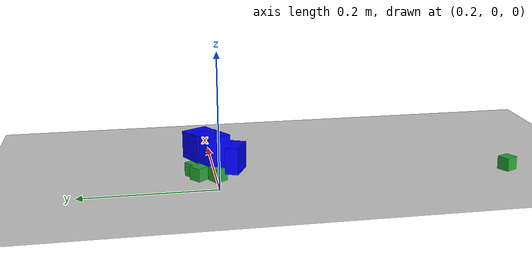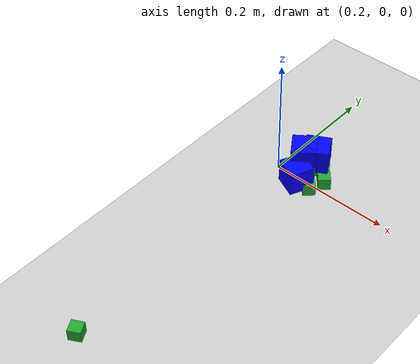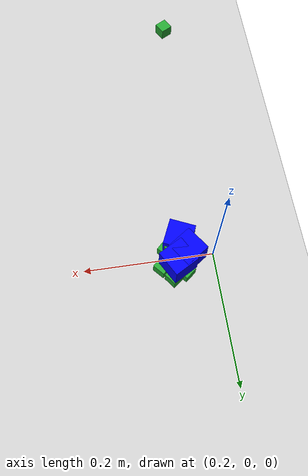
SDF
<sdf version='1.7'>
    <world name='default'>
        <scene>
            <ambient>0.0 0.0 0.0 1.0</ambient>
            <shadows>0</shadows>
            <background>0.7 0.7 0.7 1</background>
        </scene>
        <!-- A global light source -->
        <include>
            <uri>model://sun</uri>
        </include>

        <!-- A ground plane -->
        <include>
            <uri>model://ground_plane</uri>
        </include>

        <!--CUBES-->

        <model name='cube_red1'>
            <include>
                <uri>model://cube_red</uri>
            </include>
            <pose frame=''>0.251 0.00503 0.011 0.000183 0.0 0.750</pose>
        </model>

        <model name='cube_green1'>
            <include>
                <uri>model://cube_green</uri>
            </include>
            <pose frame=''>0.281 0.0135 0.011 0 0 0.7283</pose>
        </model>

        <model name='cube_green2'>
            <include>
                <uri>model://cube_green</uri>
            </include>
            <pose frame=''>0.247 0.0247 0.011 -0.005 -0.0005 0.6658</pose>
        </model>

        <model name='cube_blue1'>
            <include>
                <uri>model://cube_blue</uri>
            </include>
            <pose frame=''>0.26 0.0195 0.030 0.0 0.0 0.506</pose>
        </model>
        <model name='cube_green3'>
            <include>
                <uri>model://cube_green</uri>
            </include>
            <pose frame=''>0.266 0.031 0.011 -0.00036 0.0 0.632</pose>
        </model>
        <model name='cube_green4'>
            <include>
                <uri>model://cube_green</uri>
            </include>
            <pose frame=''>0.271 -0.013 0.011 1.5758 0.003 -0.80</pose>
        </model>
        <model name='cube_blue2'>
            <include>
                <uri>model://cube_blue</uri>
            </include>
            <pose frame=''>0.244 0.008 0.030 0.020 -0.015 0.6022</pose>
        </model>
        <model name='cube_green5'>
            <include>
                <uri>model://cube_green</uri>
            </include>
            <pose frame=''>0.2626 -0.00394 0.030 0.0028 0.0089 0.4633</pose>
        </model>
        <model name='cube_green6'>
            <include>
                <uri>model://cube_green</uri>
            </include>
            <pose frame=''>0.2388 -0.0016 0.011 0.0 -0.021 0.5671</pose>
        </model>
        <model name='cube_blue3'>
            <include>
                <uri>model://cube_blue</uri>
            </include>
            <pose frame=''>0.2514 -0.02 0.011 0.00225 0.001118 -0.4284</pose>
        </model>
        <model name='cube_green7'>
            <include>
                <uri>model://cube_green</uri>
            </include>
            <pose frame=''>0.2076 -0.4405 0.011 0.0 0.0077 0.4973</pose>
        </model>

        <physics name='default_physics' default='0' type='ode'>
            <max_step_size>0.001</max_step_size>
            <real_time_factor>1</real_time_factor>
            <real_time_update_rate>1000</real_time_update_rate>
        </physics>
        <!--GUI-->
        <gui fullscreen='0'>
            <camera name='user_camera'>
                <pose frame=''>0.198 -0.823 0.916 0 0.763 1.592</pose>
                <view_controller>orbit</view_controller>
                <projection_type>perspective</projection_type>
            </camera>
        </gui>
        <!-- SplotLight source -->
    <light name='user_spot_light_0' type='spot'>
      <pose>0.24066 -0.017779 1 0 -0 0</pose>
      <diffuse>0.5 0.5 0.5 1</diffuse>
      <specular>0.1 0.1 0.1 1</specular>
      <direction>0 0 -1</direction>
      <attenuation>
        <range>20</range>
        <constant>0.5</constant>
        <linear>0.01</linear>
        <quadratic>0.001</quadratic>
      </attenuation>
      <cast_shadows>0</cast_shadows>
      <spot>
        <inner_angle>0.6</inner_angle>
        <outer_angle>1</outer_angle>
        <falloff>1</falloff>
      </spot>
    </light>

    </world>
</sdf>

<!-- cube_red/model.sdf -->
<sdf version='1.6'>
  <model name='cube_red'>
    <link name='link_1'>
      <inertial>
        <mass>1e-4</mass>
        <inertia>
          <ixx>1.0e-8</ixx>
          <ixy>0</ixy>
          <ixz>0</ixz>
          <iyy>1.0e-8</iyy>
          <iyz>0</iyz>
          <izz>1.0e-8</izz>
        </inertia>
        <pose frame=''>0 0 0 0 -0 0</pose>
      </inertial>
      <pose frame=''>0 0 0 0 -0 0</pose>
      <gravity>1</gravity>
      <self_collide>0</self_collide>
      <kinematic>0</kinematic>
      <enable_wind>0</enable_wind>
      <visual name='visual'>
        <pose frame=''>0 0 0 0 -0 0</pose>
        <geometry>
          <box>
            <size>0.02 0.02 0.02</size>
          </box>
        </geometry>
        <material>
          <lighting>1</lighting>
          <script>
            <uri>file://media/materials/scripts/gazebo.material</uri>
            <name>Gazebo/Grey</name>
          </script>
          <shader type='vertex'>
            <normal_map>__default__</normal_map>
          </shader>
          <ambient>0.643 0 0 1</ambient>
          <diffuse>0.835 0.114 0.114 1</diffuse>
          <specular>0.333 0.341 0.325 1</specular>
          <emissive>0 0 0 1</emissive>
        </material>
        <transparency>0</transparency>
        <cast_shadows>1</cast_shadows>
      </visual>
      <collision name='collision'>
        <laser_retro>0</laser_retro>
        <max_contacts>50</max_contacts>
        <pose frame=''>0 0 0 0 -0 0</pose>
        <geometry>
          <box>
            <size>0.02 0.02 0.02</size>
          </box>
        </geometry>
        <surface>
          <friction>
            <ode>
              <mu>1e+6</mu>
              <mu2>1e+6</mu2>
            </ode>
            <torsional>
              <coefficient>1</coefficient>
              <patch_radius>0</patch_radius>
              <surface_radius>0</surface_radius>
              <use_patch_radius>1</use_patch_radius>
              <ode>
                <slip>0</slip>
              </ode>
            </torsional>
          </friction>
          <bounce>
            <restitution_coefficient>0</restitution_coefficient>
            <threshold>1e+06</threshold>
          </bounce>
          <contact>
            <collide_without_contact>0</collide_without_contact>
            <collide_without_contact_bitmask>1</collide_without_contact_bitmask>
            <collide_bitmask>1</collide_bitmask>
            <ode>
              <soft_cfm>0</soft_cfm>
              <soft_erp>0.2</soft_erp>
              <kp>1e+13</kp>
              <kd>1</kd>
              <max_vel>0.0</max_vel>
              <min_depth>0.002</min_depth>
            </ode>
            <bullet>
              <split_impulse>1</split_impulse>
              <split_impulse_penetration_threshold>-0.01</split_impulse_penetration_threshold>
              <soft_cfm>0</soft_cfm>
              <soft_erp>0.2</soft_erp>
              <kp>1e+13</kp>
              <kd>1</kd>
            </bullet>
          </contact>
        </surface>
      </collision>
    </link>
    <static>0</static>
    <allow_auto_disable>1</allow_auto_disable>
  </model>
</sdf>

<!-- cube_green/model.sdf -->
<sdf version='1.6'>
  <model name='cube_green'>
    <link name='link_1'>
      <inertial>
        <mass>1e-4</mass>
        <inertia>
          <ixx>1.0e-8</ixx>
          <ixy>0</ixy>
          <ixz>0</ixz>
          <iyy>1.0e-8</iyy>
          <iyz>0</iyz>
          <izz>1.0e-8</izz>
        </inertia>
        <pose frame=''>0 0 0 0 -0 0</pose>
      </inertial>
      <pose frame=''>0 0 0 0 -0 0</pose>
      <gravity>1</gravity>
      <self_collide>0</self_collide>
      <kinematic>0</kinematic>
      <enable_wind>0</enable_wind>
      <visual name='visual'>
        <pose frame=''>0 0 0 0 -0 0</pose>
        <geometry>
          <box>
            <size>0.02 0.02 0.02</size>
          </box>
        </geometry>
        <material>
          <lighting>1</lighting>
          <script>
            <uri>file://media/materials/scripts/gazebo.material</uri>
            <name>Gazebo/Green</name>
          </script>
          <shader type='vertex'>
            <normal_map>__default__</normal_map>
          </shader>
          <ambient>0.208 0.706 0.298 1</ambient>
          <diffuse>0.451 0.824 0.082 1</diffuse>
          <specular>0.18 0.204 0.212 1</specular>
          <emissive>0 0 0 1</emissive>
        </material>
        <transparency>0</transparency>
        <cast_shadows>1</cast_shadows>
      </visual>
      <collision name='collision'>
        <laser_retro>0</laser_retro>
        <max_contacts>50</max_contacts>
        <pose frame=''>0 0 0 0 -0 0</pose>
        <geometry>
          <box>
            <size>0.02 0.02 0.02</size>
          </box>
        </geometry>
        <surface>
          <friction>
            <ode>
              <mu>1e+6</mu>
              <mu2>1e+6</mu2>
            </ode>
            <torsional>
              <coefficient>1</coefficient>
              <patch_radius>0</patch_radius>
              <surface_radius>0</surface_radius>
              <use_patch_radius>1</use_patch_radius>
              <ode>
                <slip>0</slip>
              </ode>
            </torsional>
          </friction>
          <bounce>
            <restitution_coefficient>0</restitution_coefficient>
            <threshold>1e+06</threshold>
          </bounce>
          <contact>
            <collide_without_contact>0</collide_without_contact>
            <collide_without_contact_bitmask>1</collide_without_contact_bitmask>
            <collide_bitmask>1</collide_bitmask>
            <ode>
              <soft_cfm>0</soft_cfm>
              <soft_erp>0.2</soft_erp>
              <kp>1e+13</kp>
              <kd>1</kd>
              <max_vel>0.0</max_vel>
              <min_depth>0.002</min_depth>
            </ode>
            <bullet>
              <split_impulse>1</split_impulse>
              <split_impulse_penetration_threshold>-0.01</split_impulse_penetration_threshold>
              <soft_cfm>0</soft_cfm>
              <soft_erp>0.2</soft_erp>
              <kp>1e+13</kp>
              <kd>1</kd>
            </bullet>
          </contact>
        </surface>
      </collision>
    </link>
    <static>0</static>
    <allow_auto_disable>1</allow_auto_disable>
  </model>
</sdf>

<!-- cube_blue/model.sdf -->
<sdf version="1.5">
  <model name="cube_blue">
    <link name="link">
      <pose>0 0 0.02 0 0 0</pose>
      <inertial>
        <mass>0.027</mass>
        <inertia>
          <ixx>2.3541666666666672e-05</ixx>
          <ixy>0</ixy>
          <ixz>0</ixz>
          <iyy>2.3541666666666672e-05</iyy>
          <iyz>0</iyz>
          <izz>2.3541666666666672e-05</izz>
        </inertia>
      </inertial>

      <collision name="collision">
        <geometry>
          <box>
            <size>0.04 0.04 0.04</size>
          </box>
        </geometry>
        <surface>
          <contact>
            <!-- Red Pine coefficients for longitudinal axis of the wood
                 according to:
                 http://www.fpl.fs.fed.us/documnts/fplgtr/fplgtr113/ch04.pdf -->
            <poissons_ratio>0.347</poissons_ratio>
            <elastic_modulus>8.8e+09</elastic_modulus>
            <ode>
              <kp>100000</kp>
              <kd>1</kd>
              <max_vel>1.0</max_vel>
              <min_depth>0.001</min_depth>
            </ode>
          </contact>
          <friction>
            <torsional>
              <coefficient>1.0</coefficient>
              <use_patch_radius>0</use_patch_radius>
              <surface_radius>0.05</surface_radius>
            </torsional>
          </friction>
        </surface>
      </collision>

      <visual name="visual">
        <geometry>
          <box>
            <size>0.04 0.04 0.04</size>
          </box>
        </geometry>
        <material>
         <ambient>0 0 1 1</ambient>
				 <diffuse>0 0 1 1</diffuse>
				 <specular>0.1 0.1 0.1 1</specular>
				 <emissive>0 0 0 0</emissive>
        </material>
      </visual>

    </link>
  </model>
</sdf>
